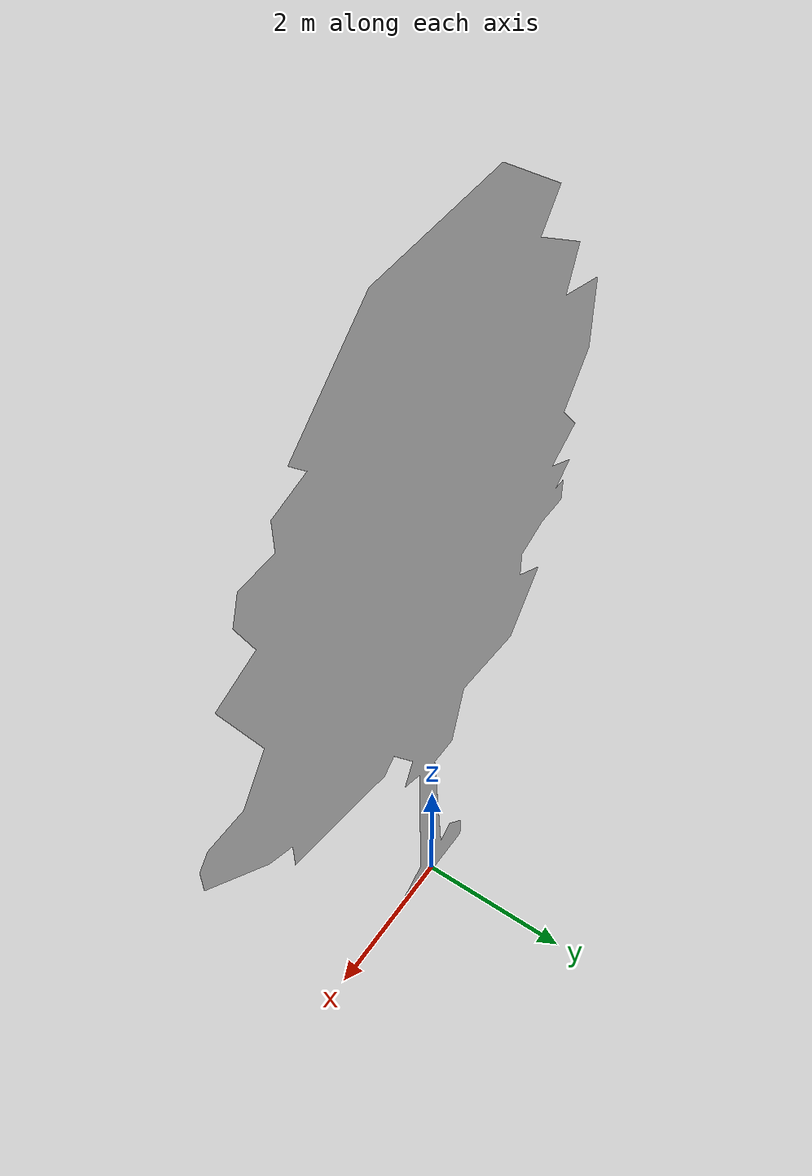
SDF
<?xml version='1.0'?>
<sdf version='1.5'>
  <model name='tree'>
    <static>true</static>
    <link name="tree">
        <collision name="collision">
            <geometry>
                <mesh>
		   <scale>1 1 1</scale>
                    <uri>model://tree/meshes/model.dae</uri>
                </mesh>
            </geometry>
        </collision>
	<visual name="visual">
            <geometry>
                <mesh>
		   <scale>1 1 1</scale>
                    <uri>model://treee/meshes/model.dae</uri>
                </mesh>
            </geometry>
        </visual>
    </link>
  </model>
</sdf>
